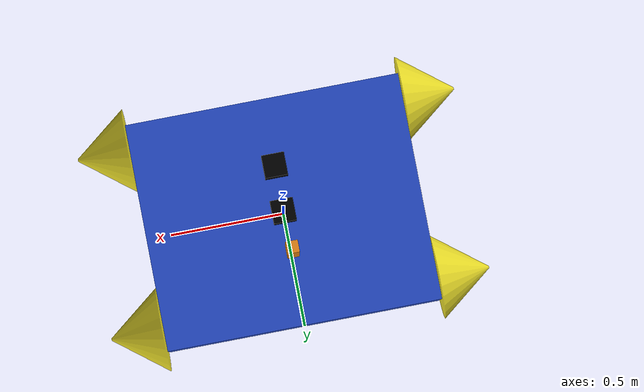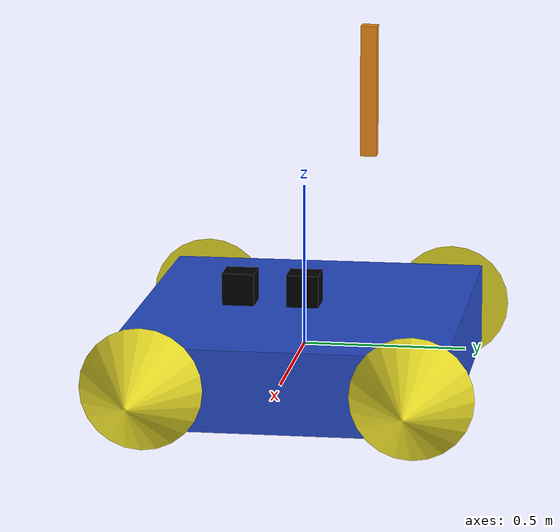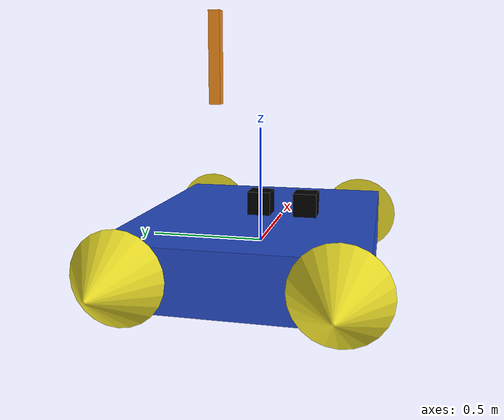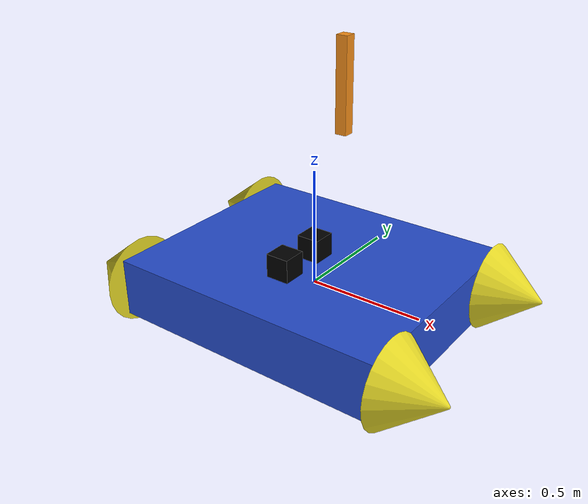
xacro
<?xml version="1.0"?>
<robot xmlns:xacro="http://www.ros.org/wiki/xacro" name="my_robot">

  <xacro:property name="length" value="1.21" />
  <xacro:property name="width" value="1" />
  <xacro:property name="height" value="0.5" />
  <xacro:property name="length_wheel_disc" value="0.01" />
  <xacro:property name="radius_wheel_disc" value="0.15" />
  <xacro:property name="length_wheel" value="0.11" />
  <xacro:property name="radius_wheel" value="0.12" />
  <xacro:property name="wheel_offset" value="0.61" />
  <xacro:property name="cone_scale" value="0.5 0.5 0.5" />
  <xacro:property name="cone_name" value="cone.dae" />

  <xacro:macro name="default_inertial" params="mass">
    <inertial>
      <origin rpy="0.0 0 0" xyz="0 0 0"/>
      <mass value="${mass}" />
      <inertia ixx="1.0" ixy="0.0" ixz="0.0"
               iyy="1.0" iyz="0.0"
               izz="1.0" />
    </inertial>
  </xacro:macro>

  <link name="base_footprint">
    <visual>
      <origin rpy="0 0 0" xyz="0 0 0"/>
      <geometry>
        <box size="0 0 0"/>
      </geometry>
    </visual>
    <collision>
      <origin rpy="0 0 0" xyz="0 0 0"/>
      <geometry>
        <box size="0 0 0"/>
      </geometry>
    </collision>
    <xacro:default_inertial mass="0.1"/>
  </link>

  <link name="base_link">
    <visual>
      <origin rpy="0 0 0" xyz="0 0 0"/>
      <geometry>
        <box size="${length} ${width} ${height/2}"/>
      </geometry>
    </visual>
    <collision>
      <origin rpy="0 0 0" xyz="0 0 0"/>
      <geometry>
        <box size="${length} ${width} ${height/2}"/>
      </geometry>
    </collision>
    <xacro:default_inertial mass="30"/>
  </link>

  <link name="wheel_1">
    <visual>
      <geometry>
        <mesh filename="package://my_robot/urdf/${cone_name}" scale="${cone_scale}"/>
      </geometry>
      <origin rpy="0 0 0" xyz="0 0 0"/>
    </visual>

    <collision>
      <geometry>
        <mesh filename="package://my_robot/urdf/${cone_name}" scale="${cone_scale}"/>
      </geometry>
      <origin rpy="0 0 0" xyz="0 0 0"/>
    </collision>

    <xacro:default_inertial mass="3"/>
  </link>

  <link name="wheel_2">
    <visual>
      <geometry>
        <mesh filename="package://my_robot/urdf/${cone_name}" scale="${cone_scale}"/>
      </geometry>
      <origin rpy="0 0 0" xyz="0 0 0"/>
    </visual>

    <collision>
      <geometry>
        <mesh filename="package://my_robot/urdf/${cone_name}" scale="${cone_scale}"/>
      </geometry>
      <origin rpy="0 0 0" xyz="0 0 0"/>
    </collision>

    <xacro:default_inertial mass="3"/>
  </link>

  <link name="wheel_3">
    <visual>
      <geometry>
        <mesh filename="package://my_robot/urdf/${cone_name}" scale="${cone_scale}"/>
      </geometry>
      <origin rpy="0 0 0" xyz="0 0 0"/>
    </visual>

    <collision>
      <geometry>
        <mesh filename="package://my_robot/urdf/${cone_name}" scale="${cone_scale}"/>
      </geometry>
      <origin rpy="0 0 0" xyz="0 0 0"/>
    </collision>

    <xacro:default_inertial mass="3"/>
  </link>

  <link name="wheel_4">
    <visual>
      <geometry>
        <mesh filename="package://my_robot/urdf/${cone_name}" scale="${cone_scale}"/>
      </geometry>
    <origin rpy="0 0 0" xyz="0 0 0"/>
    </visual>

    <collision>
      <geometry>
        <mesh filename="package://my_robot/urdf/${cone_name}" scale="${cone_scale}"/>
      </geometry>
      <origin rpy="0 0 0" xyz="0 0 0"/>
    </collision>

    <xacro:default_inertial mass="3"/>
  </link>

  <link name="imu_link">
    <visual>
      <geometry>
        <box size="0.1 0.1 0.1"/>
      </geometry>
      <origin rpy="0 0 0" xyz="0 0 0"/>
      <material name="black">
        <color rgba="0 0 0 1"/>
      </material>
    </visual>

    <collision>
      <geometry>
        <box size="0.1 0.1 0.1"/>
      </geometry>
    </collision>

    <xacro:default_inertial mass="0.1"/>
  </link>

  <link name="gps_link">
    <visual>
      <geometry>
        <box size="0.1 0.1 0.1"/>
      </geometry>
      <origin rpy="0 0 0" xyz="0 0 0"/>
      <material name="black">
        <color rgba="0 0 0 1"/>
      </material>
    </visual>

    <collision>
      <geometry>
        <box size="0.1 0.1 0.1"/>
      </geometry>
    </collision>

    <xacro:default_inertial mass="0.1"/>
  </link>

  <link name="laserscan_link">
    <visual>
      <geometry>
        <box size="0.05 0.05 0.4"/>
      </geometry>
      <origin rpy="0 0 0" xyz="0 0 0"/>
    </visual>

    <collision>
      <geometry>
        <box size="0.05 0.05 0.4"/>
      </geometry>
    </collision>

    <xacro:default_inertial mass="0.1"/>
  </link>

  <joint name="my_robot_base" type="prismatic">
    <origin rpy="0 0 0" xyz="0 0 0"/>
    <parent link="base_footprint"/>
    <child link="base_link"/>
    <axis xyz="0 1 0"/>
    <dynamics damping="1" friction="1"/>
    <limit effort="10000" lower="-50.0" upper="600.0" velocity="0.1"/>
  </joint>

  <joint name="base_to_wheel1" type="continuous">
    <parent link="base_link"/>
    <child link="wheel_1"/>
    <origin rpy="0 1.5707 0" xyz="${wheel_offset} 0.4 0"/>
    <axis xyz="0 0 1" />
  </joint>

  <joint name="base_to_wheel2" type="continuous">
    <parent link="base_link"/>
    <child link="wheel_2"/>
    <origin rpy="0 4.7121 0" xyz="${-wheel_offset} 0.4 0"/>
    <axis xyz="0 0 1" />
  </joint>

  <joint name="base_to_wheel3" type="continuous">
    <parent link="base_link"/>
    <child link="wheel_3"/>
    <origin rpy="0 1.5707 0" xyz="${wheel_offset} -0.4 0"/>
    <axis xyz="0 0 1" />
  </joint>

  <joint name="base_to_wheel4" type="continuous">
    <parent link="base_link"/>
    <child link="wheel_4"/>
    <origin rpy="0 4.7121 0" xyz="${-wheel_offset} -0.4 0"/>
    <axis xyz="0 0 1" />
  </joint>

  <joint name="base_to_imu" type="fixed">
    <parent link="base_link"/>
    <child link="imu_link"/>
    <origin rpy="0.0 0.0 0.0" xyz="0.0 0.0 0.175"/>
    <axis xyz="0 0 1" />
  </joint>

  <joint name="base_to_gps" type="fixed">
    <parent link="base_link"/>
    <child link="gps_link"/>
    <origin rpy="0.0 0.0 0.0" xyz="0.0 -0.2 0.175"/>
    <axis xyz="0 0 1" />
  </joint>

  <joint name="base_to_laserscan" type="fixed">
    <parent link="base_link"/>
    <child link="laserscan_link"/>
    <origin rpy="0.0 0.0 ${pi}" xyz="0.0 0.2 0.800"/>
    <axis xyz="0 0 1" />
  </joint>

  <transmission name="transmission_wheel_1">
    <type>transmission_interface/SimpleTransmission</type>
    <joint name="base_to_wheel1">
      <hardwareInterface>hardware_interface/EffortJointInterface</hardwareInterface>
    </joint>
    <actuator name="motor_wheel_1">
      <hardwareInterface>hardware_interface/EffortJointInterface</hardwareInterface>
      <mechanicalReduction>1</mechanicalReduction>
    </actuator>
  </transmission>

  <transmission name="transmission_wheel_2">
    <type>transmission_interface/SimpleTransmission</type>
    <joint name="base_to_wheel2">
      <hardwareInterface>hardware_interface/EffortJointInterface</hardwareInterface>
    </joint>
    <actuator name="motor_wheel_2">
      <hardwareInterface>hardware_interface/EffortJointInterface</hardwareInterface>
      <mechanicalReduction>1</mechanicalReduction>
    </actuator>
  </transmission>

  <gazebo reference="base_link">
    <material>Gazebo/Blue</material>
    <gravity>1</gravity>
  </gazebo>

  <gazebo reference="wheel_1">
    <mu1 value="200.0"/>
    <mu2 value="100.0"/>
    <kp value="10000000.0" />
    <kd value="1.0" />
    <material>Gazebo/Yellow</material>
  </gazebo>

  <gazebo reference="wheel_2">
    <mu1 value="200.0"/>
    <mu2 value="100.0"/>
    <kp value="10000000.0" />
    <kd value="1.0" />
    <material>Gazebo/Yellow</material>
  </gazebo>

  <gazebo reference="wheel_3">
    <mu1 value="200.0"/>
    <mu2 value="100.0"/>
    <kp value="10000000.0" />
    <kd value="1.0" />
    <material>Gazebo/Yellow</material>
  </gazebo>

  <gazebo reference="wheel_4">
    <mu1 value="200.0"/>
    <mu2 value="100.0"/>
    <kp value="10000000.0" />
    <kd value="1.0" />
    <material>Gazebo/Yellow</material>
  </gazebo>

  <!-- Gazebo plugin for ROS Control -->
  <gazebo>
      <plugin name="gazebo_ros_control" filename="libgazebo_ros_control.so">
        <robotNamespace>/my_robot</robotNamespace>
      </plugin>
  </gazebo>

  <!-- Gazebo plugin for IMU-->
  <gazebo reference="imu_link">
    <material>Gazebo/Black</material>
    <gravity>true</gravity>
    <sensor name="imu_sensor" type="imu">
      <always_on>true</always_on>
      <update_rate>50</update_rate>
      <visualize>true</visualize>
      <topic>__default_topic__</topic>
      <plugin filename="libgazebo_ros_imu_sensor.so" name="imu_plugin">
        <topicName>imu</topicName>
        <bodyName>imu_link</bodyName>
        <updateRateHZ>50.0</updateRateHZ>
        <gaussianNoise>0.0</gaussianNoise>
        <xyzOffset>0 0 0</xyzOffset>
        <rpyOffset>0 0 0</rpyOffset>
        <frameName>imu_link</frameName>
        <initialOrientationAsReference>false</initialOrientationAsReference>
      </plugin>
      <pose>0 0 0 0 0 0</pose>
    </sensor>
  </gazebo>

  <!-- Plugin for GPS sensor -->
  <gazebo reference="gps_link">
    <material>Gazebo/White</material>
  </gazebo>

  <gazebo> <!--Does not work to put reference to gps_link here, see: https://answers.ros.org/question/44732/gps-hector-gazebo/-->
    <plugin name="gps_sim" filename="libhector_gazebo_ros_gps.so">
      <updateRate>40</updateRate>
      <bodyName>gps_link</bodyName>
      <topicName>gps</topicName>
      <referenceLatitude>57.70887</referenceLatitude>
      <referenceLongitude>11.97456</referenceLongitude>
      <drift>0.0 0.0 0.0</drift>
      <gaussianNoise>0.5 0.5 0.0</gaussianNoise>
      <velocityDrift>0 0 0</velocityDrift>
      <velocityGaussianNoise>0.0 0.0 0.0</velocityGaussianNoise>
    </plugin>
  </gazebo>

    <!-- Gazebo plugin for laser scan sensor-->
  <gazebo reference="laserscan_link">
    <mu1>0.2</mu1>
    <mu2>0.2</mu2>
    <material>Gazebo/Orange</material>
  </gazebo>
  <gazebo reference="laserscan_link">
    <sensor type="ray" name="head_hokuyo_sensor">
      <pose>0 0 0 0 0 0</pose>
      <visualize>true</visualize>
      <update_rate>200</update_rate>
      <ray>
        <scan>
          <horizontal>
            <samples>720</samples>
            <resolution>1</resolution>
            <min_angle>-1.570796</min_angle>
            <max_angle>1.570796</max_angle>
          </horizontal>
        </scan>
        <range>
          <min>0.10</min>
          <max>40.0</max>
          <resolution>0.01</resolution>
        </range>
        <noise>
          <type>gaussian</type>
          <mean>0.0</mean>
          <stddev>0.01</stddev>
        </noise>
      </ray>
      <plugin name="gazebo_ros_head_hokuyo_controller" filename="libgazebo_ros_laser.so">
        <topicName>/rrbot/laser/scan</topicName>
        <frameName>hokuyo_link</frameName>
      </plugin>
    </sensor>
  </gazebo>

</robot>
